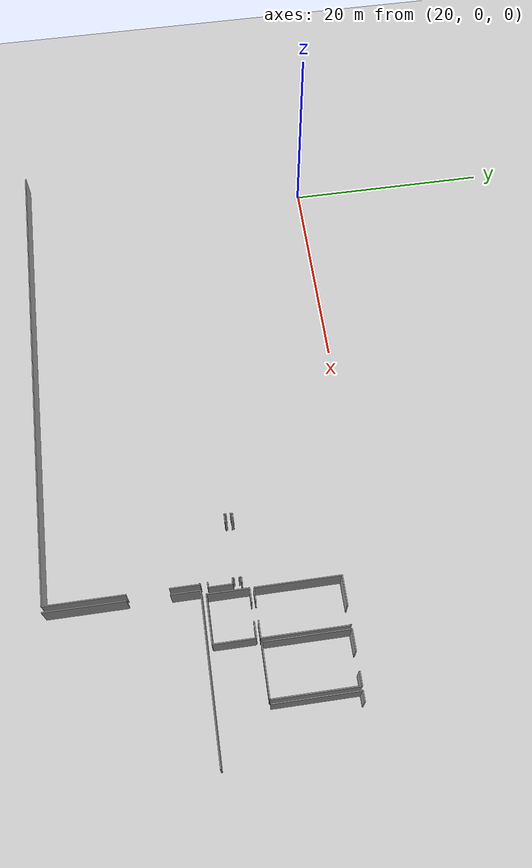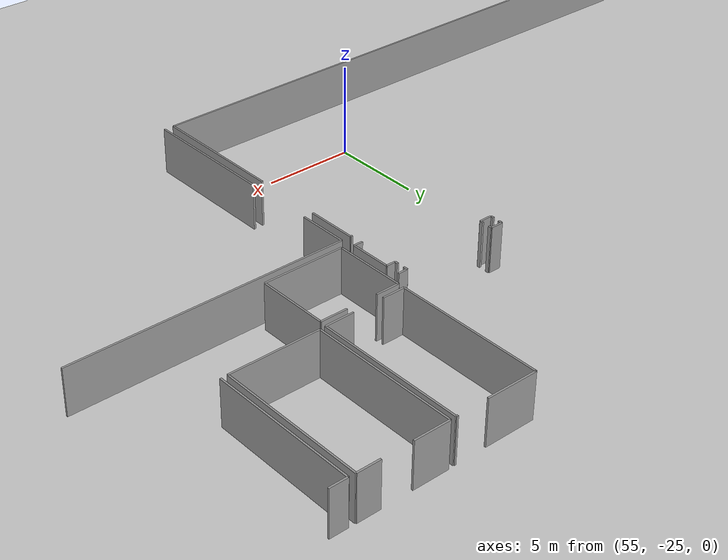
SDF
<sdf version="1.6">
 <world name="default">
  <model name="ground_plane">
   <static>1</static>
   <link name="link">
    <collision name="collision">
     <geometry><plane><normal>0 0 1</normal><size>100 100</size></plane></geometry>
     <surface><friction><ode><mu>100</mu><mu2>50</mu2></ode></friction></surface>
    </collision>
    <visual name="visual">
     <cast_shadows>0</cast_shadows>
     <geometry><plane><normal>0 0 1</normal><size>100 100</size></plane></geometry>
     <material>
      <script><uri>file://media/materials/scripts/gazebo.material</uri><name>Gazebo/Grey</name></script>
     </material>
    </visual>
   </link>
  </model>
  <model name="50010535_PLAN1">
   <static>1</static>
   <link name="Wall_291">
    <collision name="Wall_291_Collision">
     <geometry><box><size>0.109273647897 0.1 2.5</size></box></geometry>
     <pose>0.0546368239487 0 1.25 0 0 0</pose>
    </collision>
    <visual name="Wall_291_Visual">
     <pose>0.0546368239487 0 1.25 0 0 0</pose>
     <geometry><box><size>0.109273647897 0.1 2.5</size></box></geometry>
     <material>
      <script><uri>file://media/materials/scripts/gazebo.material</uri><name>Gazebo/Grey</name></script>
      <ambient>1 1 1 1</ambient>
     </material>
    </visual>
    <pose>165.311207537 -45.0415811643 0 0 0 0.0</pose>
   </link>
   <link name="Wall_292">
    <collision name="Wall_292_Collision">
     <geometry><box><size>2.71735608597 0.1 2.5</size></box></geometry>
     <pose>1.35867804299 0 1.25 0 0 0</pose>
    </collision>
    <visual name="Wall_292_Visual">
     <pose>1.35867804299 0 1.25 0 0 0</pose>
     <geometry><box><size>2.71735608597 0.1 2.5</size></box></geometry>
     <material>
      <script><uri>file://media/materials/scripts/gazebo.material</uri><name>Gazebo/Grey</name></script>
      <ambient>1 1 1 1</ambient>
     </material>
    </visual>
    <pose>165.420481185 -45.0415811643 0 0 0 -1.57079632679</pose>
   </link>
   <link name="Wall_293">
    <collision name="Wall_293_Collision">
     <geometry><box><size>7.39198109312 0.1 2.5</size></box></geometry>
     <pose>3.69599054656 0 1.25 0 0 0</pose>
    </collision>
    <visual name="Wall_293_Visual">
     <pose>3.69599054656 0 1.25 0 0 0</pose>
     <geometry><box><size>7.39198109312 0.1 2.5</size></box></geometry>
     <material>
      <script><uri>file://media/materials/scripts/gazebo.material</uri><name>Gazebo/Grey</name></script>
      <ambient>1 1 1 1</ambient>
     </material>
    </visual>
    <pose>165.420481185 -51.5913927943 0 0 0 -1.57079632679</pose>
   </link>
   <link name="Wall_294">
    <collision name="Wall_294_Collision">
     <geometry><box><size>47.5500469949 0.1 2.5</size></box></geometry>
     <pose>23.7750234974 0 1.25 0 0 0</pose>
    </collision>
    <visual name="Wall_294_Visual">
     <pose>23.7750234974 0 1.25 0 0 0</pose>
     <geometry><box><size>47.5500469949 0.1 2.5</size></box></geometry>
     <material>
      <script><uri>file://media/materials/scripts/gazebo.material</uri><name>Gazebo/Grey</name></script>
      <ambient>1 1 1 1</ambient>
     </material>
    </visual>
    <pose>165.420481185 -58.9833738874 0 0 0 3.14148042194</pose>
   </link>
   <link name="Wall_382">
    <collision name="Wall_382_Collision">
     <geometry><box><size>0.529850129921 0.1 2.5</size></box></geometry>
     <pose>0.264925064961 0 1.25 0 0 0</pose>
    </collision>
    <visual name="Wall_382_Visual">
     <pose>0.264925064961 0 1.25 0 0 0</pose>
     <geometry><box><size>0.529850129921 0.1 2.5</size></box></geometry>
     <material>
      <script><uri>file://media/materials/scripts/gazebo.material</uri><name>Gazebo/Grey</name></script>
      <ambient>1 1 1 1</ambient>
     </material>
    </visual>
    <pose>165.807767323 -41.3514354873 0 0 0 3.14159265359</pose>
   </link>
   <link name="Wall_383">
    <collision name="Wall_383_Collision">
     <geometry><box><size>0.232778282498 0.1 2.5</size></box></geometry>
     <pose>0.116389141249 0 1.25 0 0 0</pose>
    </collision>
    <visual name="Wall_383_Visual">
     <pose>0.116389141249 0 1.25 0 0 0</pose>
     <geometry><box><size>0.232778282498 0.1 2.5</size></box></geometry>
     <material>
      <script><uri>file://media/materials/scripts/gazebo.material</uri><name>Gazebo/Grey</name></script>
      <ambient>1 1 1 1</ambient>
     </material>
    </visual>
    <pose>165.277917193 -41.3514354873 0 0 0 -1.57079632679</pose>
   </link>
   <link name="Wall_384">
    <collision name="Wall_384_Collision">
     <geometry><box><size>0.182715704275 0.1 2.5</size></box></geometry>
     <pose>0.0913578521375 0 1.25 0 0 0</pose>
    </collision>
    <visual name="Wall_384_Visual">
     <pose>0.0913578521375 0 1.25 0 0 0</pose>
     <geometry><box><size>0.182715704275 0.1 2.5</size></box></geometry>
     <material>
      <script><uri>file://media/materials/scripts/gazebo.material</uri><name>Gazebo/Grey</name></script>
      <ambient>1 1 1 1</ambient>
     </material>
    </visual>
    <pose>159.944346677 -41.5842137698 0 0 0 1.57079632679</pose>
   </link>
   <link name="Wall_385">
    <collision name="Wall_385_Collision">
     <geometry><box><size>0.677750741727 0.1 2.5</size></box></geometry>
     <pose>0.338875370863 0 1.25 0 0 0</pose>
    </collision>
    <visual name="Wall_385_Visual">
     <pose>0.338875370863 0 1.25 0 0 0</pose>
     <geometry><box><size>0.677750741727 0.1 2.5</size></box></geometry>
     <material>
      <script><uri>file://media/materials/scripts/gazebo.material</uri><name>Gazebo/Grey</name></script>
      <ambient>1 1 1 1</ambient>
     </material>
    </visual>
    <pose>159.944346677 -41.4014980655 0 0 0 3.14159265359</pose>
   </link>
   <link name="Wall_386">
    <collision name="Wall_386_Collision">
     <geometry><box><size>0.215497798644 0.1 2.5</size></box></geometry>
     <pose>0.107748899322 0 1.25 0 0 0</pose>
    </collision>
    <visual name="Wall_386_Visual">
     <pose>0.107748899322 0 1.25 0 0 0</pose>
     <geometry><box><size>0.215497798644 0.1 2.5</size></box></geometry>
     <material>
      <script><uri>file://media/materials/scripts/gazebo.material</uri><name>Gazebo/Grey</name></script>
      <ambient>1 1 1 1</ambient>
     </material>
    </visual>
    <pose>159.266595935 -41.4014980655 0 0 0 -1.57079632679</pose>
   </link>
   <link name="Wall_429">
    <collision name="Wall_429_Collision">
     <geometry><box><size>0.193897193827 0.1 2.5</size></box></geometry>
     <pose>0.0969485969137 0 1.25 0 0 0</pose>
    </collision>
    <visual name="Wall_429_Visual">
     <pose>0.0969485969137 0 1.25 0 0 0</pose>
     <geometry><box><size>0.193897193827 0.1 2.5</size></box></geometry>
     <material>
      <script><uri>file://media/materials/scripts/gazebo.material</uri><name>Gazebo/Grey</name></script>
      <ambient>1 1 1 1</ambient>
     </material>
    </visual>
    <pose>159.244487081 -41.9501534278 0 0 0 -1.57079632679</pose>
   </link>
   <link name="Wall_430">
    <collision name="Wall_430_Collision">
     <geometry><box><size>0.689694605567 0.1 2.5</size></box></geometry>
     <pose>0.344847302783 0 1.25 0 0 0</pose>
    </collision>
    <visual name="Wall_430_Visual">
     <pose>0.344847302783 0 1.25 0 0 0</pose>
     <geometry><box><size>0.689694605567 0.1 2.5</size></box></geometry>
     <material>
      <script><uri>file://media/materials/scripts/gazebo.material</uri><name>Gazebo/Grey</name></script>
      <ambient>1 1 1 1</ambient>
     </material>
    </visual>
    <pose>159.244487081 -42.1440506217 0 0 0 0.0</pose>
   </link>
   <link name="Wall_431">
    <collision name="Wall_431_Collision">
     <geometry><box><size>0.179157957599 0.1 2.5</size></box></geometry>
     <pose>0.0895789787996 0 1.25 0 0 0</pose>
    </collision>
    <visual name="Wall_431_Visual">
     <pose>0.0895789787996 0 1.25 0 0 0</pose>
     <geometry><box><size>0.179157957599 0.1 2.5</size></box></geometry>
     <material>
      <script><uri>file://media/materials/scripts/gazebo.material</uri><name>Gazebo/Grey</name></script>
      <ambient>1 1 1 1</ambient>
     </material>
    </visual>
    <pose>159.934181686 -42.1440506217 0 0 0 1.57079632679</pose>
   </link>
   <link name="Wall_432">
    <collision name="Wall_432_Collision">
     <geometry><box><size>0.186019326188 0.1 2.5</size></box></geometry>
     <pose>0.0930096630941 0 1.25 0 0 0</pose>
    </collision>
    <visual name="Wall_432_Visual">
     <pose>0.0930096630941 0 1.25 0 0 0</pose>
     <geometry><box><size>0.186019326188 0.1 2.5</size></box></geometry>
     <material>
      <script><uri>file://media/materials/scripts/gazebo.material</uri><name>Gazebo/Grey</name></script>
      <ambient>1 1 1 1</ambient>
     </material>
    </visual>
    <pose>165.281729065 -41.9648926641 0 0 0 -1.57079632679</pose>
   </link>
   <link name="Wall_433">
    <collision name="Wall_433_Collision">
     <geometry><box><size>0.509011899392 0.1 2.5</size></box></geometry>
     <pose>0.254505949696 0 1.25 0 0 0</pose>
    </collision>
    <visual name="Wall_433_Visual">
     <pose>0.254505949696 0 1.25 0 0 0</pose>
     <geometry><box><size>0.509011899392 0.1 2.5</size></box></geometry>
     <material>
      <script><uri>file://media/materials/scripts/gazebo.material</uri><name>Gazebo/Grey</name></script>
      <ambient>1 1 1 1</ambient>
     </material>
    </visual>
    <pose>165.281729065 -42.1509119902 0 0 0 0.0</pose>
   </link>
   <link name="Wall_434">
    <collision name="Wall_434_Collision">
     <geometry><box><size>2.20732768753 0.1 2.5</size></box></geometry>
     <pose>1.10366384376 0 1.25 0 0 0</pose>
    </collision>
    <visual name="Wall_434_Visual">
     <pose>1.10366384376 0 1.25 0 0 0</pose>
     <geometry><box><size>2.20732768753 0.1 2.5</size></box></geometry>
     <material>
      <script><uri>file://media/materials/scripts/gazebo.material</uri><name>Gazebo/Grey</name></script>
      <ambient>1 1 1 1</ambient>
     </material>
    </visual>
    <pose>165.790740964 -42.1509119902 0 0 0 -1.57079632679</pose>
   </link>
   <link name="Wall_435">
    <collision name="Wall_435_Collision">
     <geometry><box><size>0.484361797424 0.1 2.5</size></box></geometry>
     <pose>0.242180898712 0 1.25 0 0 0</pose>
    </collision>
    <visual name="Wall_435_Visual">
     <pose>0.242180898712 0 1.25 0 0 0</pose>
     <geometry><box><size>0.484361797424 0.1 2.5</size></box></geometry>
     <material>
      <script><uri>file://media/materials/scripts/gazebo.material</uri><name>Gazebo/Grey</name></script>
      <ambient>1 1 1 1</ambient>
     </material>
    </visual>
    <pose>165.790740964 -44.3582396778 0 0 0 3.14159265359</pose>
   </link>
   <link name="Wall_638">
    <collision name="Wall_638_Collision">
     <geometry><box><size>7.44788854088 0.1 2.5</size></box></geometry>
     <pose>3.72394427044 0 1.25 0 0 0</pose>
    </collision>
    <visual name="Wall_638_Visual">
     <pose>3.72394427044 0 1.25 0 0 0</pose>
     <geometry><box><size>7.44788854088 0.1 2.5</size></box></geometry>
     <material>
      <script><uri>file://media/materials/scripts/gazebo.material</uri><name>Gazebo/Grey</name></script>
      <ambient>1 1 1 1</ambient>
     </material>
    </visual>
    <pose>165.955159686 -59.0098028627 0 0 0 1.57079632679</pose>
   </link>
   <link name="Wall_639">
    <collision name="Wall_639_Collision">
     <geometry><box><size>2.69600960592 0.1 2.5</size></box></geometry>
     <pose>1.34800480296 0 1.25 0 0 0</pose>
    </collision>
    <visual name="Wall_639_Visual">
     <pose>1.34800480296 0 1.25 0 0 0</pose>
     <geometry><box><size>2.69600960592 0.1 2.5</size></box></geometry>
     <material>
      <script><uri>file://media/materials/scripts/gazebo.material</uri><name>Gazebo/Grey</name></script>
      <ambient>1 1 1 1</ambient>
     </material>
    </visual>
    <pose>165.955159686 -47.7355577721 0 0 0 1.57079632679</pose>
   </link>
   <link name="Wall_640">
    <collision name="Wall_640_Collision">
     <geometry><box><size>14.9506680305 0.1 2.5</size></box></geometry>
     <pose>7.47533401523 0 1.25 0 0 0</pose>
    </collision>
    <visual name="Wall_640_Visual">
     <pose>7.47533401523 0 1.25 0 0 0</pose>
     <geometry><box><size>14.9506680305 0.1 2.5</size></box></geometry>
     <material>
      <script><uri>file://media/materials/scripts/gazebo.material</uri><name>Gazebo/Grey</name></script>
      <ambient>1 1 1 1</ambient>
     </material>
    </visual>
    <pose>165.955159686 -45.0395481662 0 0 0 0.0</pose>
   </link>
   <link name="Wall_704">
    <collision name="Wall_704_Collision">
     <geometry><box><size>7.90505898871 0.1 2.5</size></box></geometry>
     <pose>3.95252949436 0 1.25 0 0 0</pose>
    </collision>
    <visual name="Wall_704_Visual">
     <pose>3.95252949436 0 1.25 0 0 0</pose>
     <geometry><box><size>7.90505898871 0.1 2.5</size></box></geometry>
     <material>
      <script><uri>file://media/materials/scripts/gazebo.material</uri><name>Gazebo/Grey</name></script>
      <ambient>1 1 1 1</ambient>
     </material>
    </visual>
    <pose>166.365062928 -40.3763587733 0 0 0 1.57079632679</pose>
   </link>
   <link name="Wall_705">
    <collision name="Wall_705_Collision">
     <geometry><box><size>2.73768606697 0.1 2.5</size></box></geometry>
     <pose>1.36884303349 0 1.25 0 0 0</pose>
    </collision>
    <visual name="Wall_705_Visual">
     <pose>1.36884303349 0 1.25 0 0 0</pose>
     <geometry><box><size>2.73768606697 0.1 2.5</size></box></geometry>
     <material>
      <script><uri>file://media/materials/scripts/gazebo.material</uri><name>Gazebo/Grey</name></script>
      <ambient>1 1 1 1</ambient>
     </material>
    </visual>
    <pose>166.365062928 -32.4712997846 0 0 0 0.0</pose>
   </link>
   <link name="Wall_706">
    <collision name="Wall_706_Collision">
     <geometry><box><size>0.0937720373817 0.1 2.5</size></box></geometry>
     <pose>0.0468860186909 0 1.25 0 0 0</pose>
    </collision>
    <visual name="Wall_706_Visual">
     <pose>0.0468860186909 0 1.25 0 0 0</pose>
     <geometry><box><size>0.0937720373817 0.1 2.5</size></box></geometry>
     <material>
      <script><uri>file://media/materials/scripts/gazebo.material</uri><name>Gazebo/Grey</name></script>
      <ambient>1 1 1 1</ambient>
     </material>
    </visual>
    <pose>170.755830575 -32.4712997846 0 0 0 0.0</pose>
   </link>
   <link name="Wall_707">
    <collision name="Wall_707_Collision">
     <geometry><box><size>7.90048474298 0.1 2.5</size></box></geometry>
     <pose>3.95024237149 0 1.25 0 0 0</pose>
    </collision>
    <visual name="Wall_707_Visual">
     <pose>3.95024237149 0 1.25 0 0 0</pose>
     <geometry><box><size>7.90048474298 0.1 2.5</size></box></geometry>
     <material>
      <script><uri>file://media/materials/scripts/gazebo.material</uri><name>Gazebo/Grey</name></script>
      <ambient>1 1 1 1</ambient>
     </material>
    </visual>
    <pose>170.849602612 -32.4712997846 0 0 0 -1.57079632679</pose>
   </link>
   <link name="Wall_708">
    <collision name="Wall_708_Collision">
     <geometry><box><size>1.56312141446 0.1 2.5</size></box></geometry>
     <pose>0.781560707229 0 1.25 0 0 0</pose>
    </collision>
    <visual name="Wall_708_Visual">
     <pose>0.781560707229 0 1.25 0 0 0</pose>
     <geometry><box><size>1.56312141446 0.1 2.5</size></box></geometry>
     <material>
      <script><uri>file://media/materials/scripts/gazebo.material</uri><name>Gazebo/Grey</name></script>
      <ambient>1 1 1 1</ambient>
     </material>
    </visual>
    <pose>170.849602612 -40.3717845276 0 0 0 3.14159265359</pose>
   </link>
   <link name="Wall_709">
    <collision name="Wall_709_Collision">
     <geometry><box><size>1.21752033018 0.1 2.5</size></box></geometry>
     <pose>0.60876016509 0 1.25 0 0 0</pose>
    </collision>
    <visual name="Wall_709_Visual">
     <pose>0.60876016509 0 1.25 0 0 0</pose>
     <geometry><box><size>1.21752033018 0.1 2.5</size></box></geometry>
     <material>
      <script><uri>file://media/materials/scripts/gazebo.material</uri><name>Gazebo/Grey</name></script>
      <ambient>1 1 1 1</ambient>
     </material>
    </visual>
    <pose>167.582574665 -40.3717845276 0 0 0 -3.13783562681</pose>
   </link>
   <link name="Wall_710">
    <collision name="Wall_710_Collision">
     <geometry><box><size>3.83118492024 0.1 2.5</size></box></geometry>
     <pose>1.91559246012 0 1.25 0 0 0</pose>
    </collision>
    <visual name="Wall_710_Visual">
     <pose>1.91559246012 0 1.25 0 0 0</pose>
     <geometry><box><size>3.83118492024 0.1 2.5</size></box></geometry>
     <material>
      <script><uri>file://media/materials/scripts/gazebo.material</uri><name>Gazebo/Grey</name></script>
      <ambient>1 1 1 1</ambient>
     </material>
    </visual>
    <pose>166.35769331 -44.5821235936 0 0 0 1.57079632679</pose>
   </link>
   <link name="Wall_711">
    <collision name="Wall_711_Collision">
     <geometry><box><size>1.27011556324 0.1 2.5</size></box></geometry>
     <pose>0.635057781618 0 1.25 0 0 0</pose>
    </collision>
    <visual name="Wall_711_Visual">
     <pose>0.635057781618 0 1.25 0 0 0</pose>
     <geometry><box><size>1.27011556324 0.1 2.5</size></box></geometry>
     <material>
      <script><uri>file://media/materials/scripts/gazebo.material</uri><name>Gazebo/Grey</name></script>
      <ambient>1 1 1 1</ambient>
     </material>
    </visual>
    <pose>166.35769331 -40.7509386733 0 0 0 0.0</pose>
   </link>
   <link name="Wall_712">
    <collision name="Wall_712_Collision">
     <geometry><box><size>1.45816788752 0.1 2.5</size></box></geometry>
     <pose>0.729083943762 0 1.25 0 0 0</pose>
    </collision>
    <visual name="Wall_712_Visual">
     <pose>0.729083943762 0 1.25 0 0 0</pose>
     <geometry><box><size>1.45816788752 0.1 2.5</size></box></geometry>
     <material>
      <script><uri>file://media/materials/scripts/gazebo.material</uri><name>Gazebo/Grey</name></script>
      <ambient>1 1 1 1</ambient>
     </material>
    </visual>
    <pose>169.329428283 -40.7509386733 0 0 0 0.0</pose>
   </link>
   <link name="Wall_713">
    <collision name="Wall_713_Collision">
     <geometry><box><size>3.82101992973 0.1 2.5</size></box></geometry>
     <pose>1.91050996487 0 1.25 0 0 0</pose>
    </collision>
    <visual name="Wall_713_Visual">
     <pose>1.91050996487 0 1.25 0 0 0</pose>
     <geometry><box><size>3.82101992973 0.1 2.5</size></box></geometry>
     <material>
      <script><uri>file://media/materials/scripts/gazebo.material</uri><name>Gazebo/Grey</name></script>
      <ambient>1 1 1 1</ambient>
     </material>
    </visual>
    <pose>170.78759617 -40.7509386733 0 0 0 -1.57079632679</pose>
   </link>
   <link name="Wall_714">
    <collision name="Wall_714_Collision">
     <geometry><box><size>4.42991452324 0.1 2.5</size></box></geometry>
     <pose>2.21495726162 0 1.25 0 0 0</pose>
    </collision>
    <visual name="Wall_714_Visual">
     <pose>2.21495726162 0 1.25 0 0 0</pose>
     <geometry><box><size>4.42991452324 0.1 2.5</size></box></geometry>
     <material>
      <script><uri>file://media/materials/scripts/gazebo.material</uri><name>Gazebo/Grey</name></script>
      <ambient>1 1 1 1</ambient>
     </material>
    </visual>
    <pose>170.78759617 -44.5719586031 0 0 0 -3.13929802705</pose>
   </link>
   <link name="Wall_715">
    <collision name="Wall_715_Collision">
     <geometry><box><size>7.88295013437 0.1 2.5</size></box></geometry>
     <pose>3.94147506718 0 1.25 0 0 0</pose>
    </collision>
    <visual name="Wall_715_Visual">
     <pose>3.94147506718 0 1.25 0 0 0</pose>
     <geometry><box><size>7.88295013437 0.1 2.5</size></box></geometry>
     <material>
      <script><uri>file://media/materials/scripts/gazebo.material</uri><name>Gazebo/Grey</name></script>
      <ambient>1 1 1 1</ambient>
     </material>
    </visual>
    <pose>171.172341061 -40.3384941837 0 0 0 1.57079632679</pose>
   </link>
   <link name="Wall_716">
    <collision name="Wall_716_Collision">
     <geometry><box><size>1.93795543922 0.1 2.5</size></box></geometry>
     <pose>0.968977719611 0 1.25 0 0 0</pose>
    </collision>
    <visual name="Wall_716_Visual">
     <pose>0.968977719611 0 1.25 0 0 0</pose>
     <geometry><box><size>1.93795543922 0.1 2.5</size></box></geometry>
     <material>
      <script><uri>file://media/materials/scripts/gazebo.material</uri><name>Gazebo/Grey</name></script>
      <ambient>1 1 1 1</ambient>
     </material>
    </visual>
    <pose>171.172341061 -32.4555440494 0 0 0 0.0</pose>
   </link>
   <link name="Wall_717">
    <collision name="Wall_717_Collision">
     <geometry><box><size>1.24546546127 0.1 2.5</size></box></geometry>
     <pose>0.622732730634 0 1.25 0 0 0</pose>
    </collision>
    <visual name="Wall_717_Visual">
     <pose>0.622732730634 0 1.25 0 0 0</pose>
     <geometry><box><size>1.24546546127 0.1 2.5</size></box></geometry>
     <material>
      <script><uri>file://media/materials/scripts/gazebo.material</uri><name>Gazebo/Grey</name></script>
      <ambient>1 1 1 1</ambient>
     </material>
    </visual>
    <pose>174.772272447 -32.4555440494 0 0 0 0.0</pose>
   </link>
   <link name="Wall_718">
    <collision name="Wall_718_Collision">
     <geometry><box><size>7.88015476198 0.1 2.5</size></box></geometry>
     <pose>3.94007738099 0 1.25 0 0 0</pose>
    </collision>
    <visual name="Wall_718_Visual">
     <pose>3.94007738099 0 1.25 0 0 0</pose>
     <geometry><box><size>7.88015476198 0.1 2.5</size></box></geometry>
     <material>
      <script><uri>file://media/materials/scripts/gazebo.material</uri><name>Gazebo/Grey</name></script>
      <ambient>1 1 1 1</ambient>
     </material>
    </visual>
    <pose>176.017737908 -32.4555440494 0 0 0 -1.57079632679</pose>
   </link>
   <link name="Wall_719">
    <collision name="Wall_719_Collision">
     <geometry><box><size>4.84539765393 0.1 2.5</size></box></geometry>
     <pose>2.42269882696 0 1.25 0 0 0</pose>
    </collision>
    <visual name="Wall_719_Visual">
     <pose>2.42269882696 0 1.25 0 0 0</pose>
     <geometry><box><size>4.84539765393 0.1 2.5</size></box></geometry>
     <material>
      <script><uri>file://media/materials/scripts/gazebo.material</uri><name>Gazebo/Grey</name></script>
      <ambient>1 1 1 1</ambient>
     </material>
    </visual>
    <pose>176.017737908 -40.3356988113 0 0 0 -3.14101574066</pose>
   </link>
   <link name="Wall_720">
    <collision name="Wall_720_Collision">
     <geometry><box><size>7.86490727623 0.1 2.5</size></box></geometry>
     <pose>3.93245363811 0 1.25 0 0 0</pose>
    </collision>
    <visual name="Wall_720_Visual">
     <pose>3.93245363811 0 1.25 0 0 0</pose>
     <geometry><box><size>7.86490727623 0.1 2.5</size></box></geometry>
     <material>
      <script><uri>file://media/materials/scripts/gazebo.material</uri><name>Gazebo/Grey</name></script>
      <ambient>1 1 1 1</ambient>
     </material>
    </visual>
    <pose>176.389522436 -40.3420519304 0 0 0 1.57079632679</pose>
   </link>
   <link name="Wall_721">
    <collision name="Wall_721_Collision">
     <geometry><box><size>0.968723594849 0.1 2.5</size></box></geometry>
     <pose>0.484361797424 0 1.25 0 0 0</pose>
    </collision>
    <visual name="Wall_721_Visual">
     <pose>0.484361797424 0 1.25 0 0 0</pose>
     <geometry><box><size>0.968723594849 0.1 2.5</size></box></geometry>
     <material>
      <script><uri>file://media/materials/scripts/gazebo.material</uri><name>Gazebo/Grey</name></script>
      <ambient>1 1 1 1</ambient>
     </material>
    </visual>
    <pose>176.389522436 -32.4771446542 0 0 0 0.0</pose>
   </link>
   <pose>-102.6 29.5103111122 0 0 0 0</pose>
  </model>
 </world>
</sdf>
